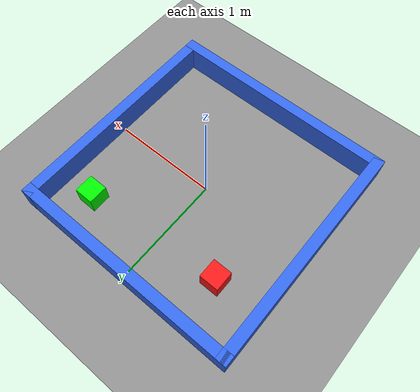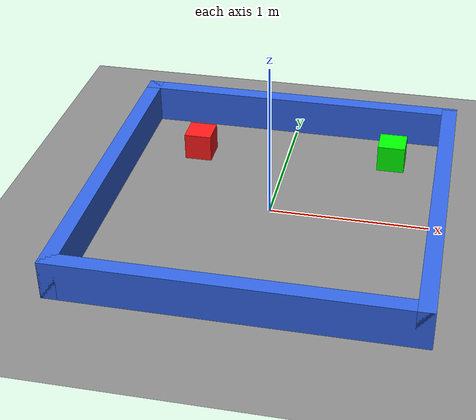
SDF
<?xml version="1.0" ?>
<sdf version="1.6">
  <world name="antbot_arena">
    <plugin name="gazebo_ros_factory" filename="libgazebo_ros_factory.so"/>

    <!-- ── Lighting ──────────────────────────────────────────────────────── -->
    <light type="directional" name="sun">
      <cast_shadows>true</cast_shadows>
      <pose>0 0 10 0 0 0</pose>
      <diffuse>0.85 0.85 0.85 1</diffuse>
      <specular>0.2 0.2 0.2 1</specular>
      <attenuation>
        <range>1000</range><constant>0.9</constant>
        <linear>0.01</linear><quadratic>0.001</quadratic>
      </attenuation>
      <direction>-0.5 0.1 -0.9</direction>
    </light>

    <!-- ── Ground plane ──────────────────────────────────────────────────── -->
    <model name="ground_plane">
      <static>true</static>
      <link name="link">
        <collision name="collision">
          <geometry>
            <plane><normal>0 0 1</normal><size>100 100</size></plane>
          </geometry>
          <surface><friction><ode><mu>100</mu><mu2>50</mu2></ode></friction></surface>
        </collision>
        <visual name="visual">
          <geometry>
            <plane><normal>0 0 1</normal><size>100 100</size></plane>
          </geometry>
          <material>
            <ambient>0.55 0.55 0.55 1</ambient>
            <diffuse>0.55 0.55 0.55 1</diffuse>
          </material>
        </visual>
      </link>
    </model>

    <!-- North wall (+Y) -->
    <model name="wall_north">
      <static>true</static>
      <pose>0 1.05 0.125 0 0 0</pose>
      <link name="link">
        <collision name="col"><geometry><box><size>2.2 0.1 0.25</size></box></geometry></collision>
        <visual name="vis">
          <geometry><box><size>2.2 0.1 0.25</size></box></geometry>
          <material><ambient>0.2 0.4 0.9 1</ambient><diffuse>0.2 0.4 0.9 1</diffuse></material>
        </visual>
      </link>
    </model>

    <!-- South wall (-Y) -->
    <model name="wall_south">
      <static>true</static>
      <pose>0 -1.05 0.125 0 0 0</pose>
      <link name="link">
        <collision name="col"><geometry><box><size>2.2 0.1 0.25</size></box></geometry></collision>
        <visual name="vis">
          <geometry><box><size>2.2 0.1 0.25</size></box></geometry>
          <material><ambient>0.2 0.4 0.9 1</ambient><diffuse>0.2 0.4 0.9 1</diffuse></material>
        </visual>
      </link>
    </model>

    <!-- East wall (+X) -->
    <model name="wall_east">
      <static>true</static>
      <pose>1.05 0 0.125 0 0 0</pose>
      <link name="link">
        <collision name="col"><geometry><box><size>0.1 2.2 0.25</size></box></geometry></collision>
        <visual name="vis">
          <geometry><box><size>0.1 2.2 0.25</size></box></geometry>
          <material><ambient>0.2 0.4 0.9 1</ambient><diffuse>0.2 0.4 0.9 1</diffuse></material>
        </visual>
      </link>
    </model>

    <!-- West wall (-X) -->
    <model name="wall_west">
      <static>true</static>
      <pose>-1.05 0 0.125 0 0 0</pose>
      <link name="link">
        <collision name="col"><geometry><box><size>0.1 2.2 0.25</size></box></geometry></collision>
        <visual name="vis">
          <geometry><box><size>0.1 2.2 0.25</size></box></geometry>
          <material><ambient>0.2 0.4 0.9 1</ambient><diffuse>0.2 0.4 0.9 1</diffuse></material>
        </visual>
      </link>
    </model>

    <!-- Red cube (distractor) -->
    <model name="red_cube">
      <pose>-0.6 0.6 0.09 0 0 0</pose>
      <static>true</static>
      <link name="link">
        <collision name="col"><geometry><box><size>0.18 0.18 0.18</size></box></geometry></collision>
        <visual name="vis">
          <geometry><box><size>0.18 0.18 0.18</size></box></geometry>
          <material><ambient>1 0.1 0.1 1</ambient><diffuse>1 0.1 0.1 1</diffuse></material>
        </visual>
      </link>
    </model>

    <!-- ── THE ONE GREEN CUBE  (target) ──────────────────────────────────── -->
    <model name="goal">
      <pose>0.7 0.7 0.09 0 0 0</pose>
      <static>true</static>
      <link name="link">
        <collision name="col"><geometry><box><size>0.18 0.18 0.18</size></box></geometry></collision>
        <visual name="vis">
          <geometry><box><size>0.18 0.18 0.18</size></box></geometry>
          <material><ambient>0.0 1.0 0.0 1</ambient><diffuse>0.0 1.0 0.0 1</diffuse></material>
        </visual>
      </link>
    </model>

  </world>
</sdf>
